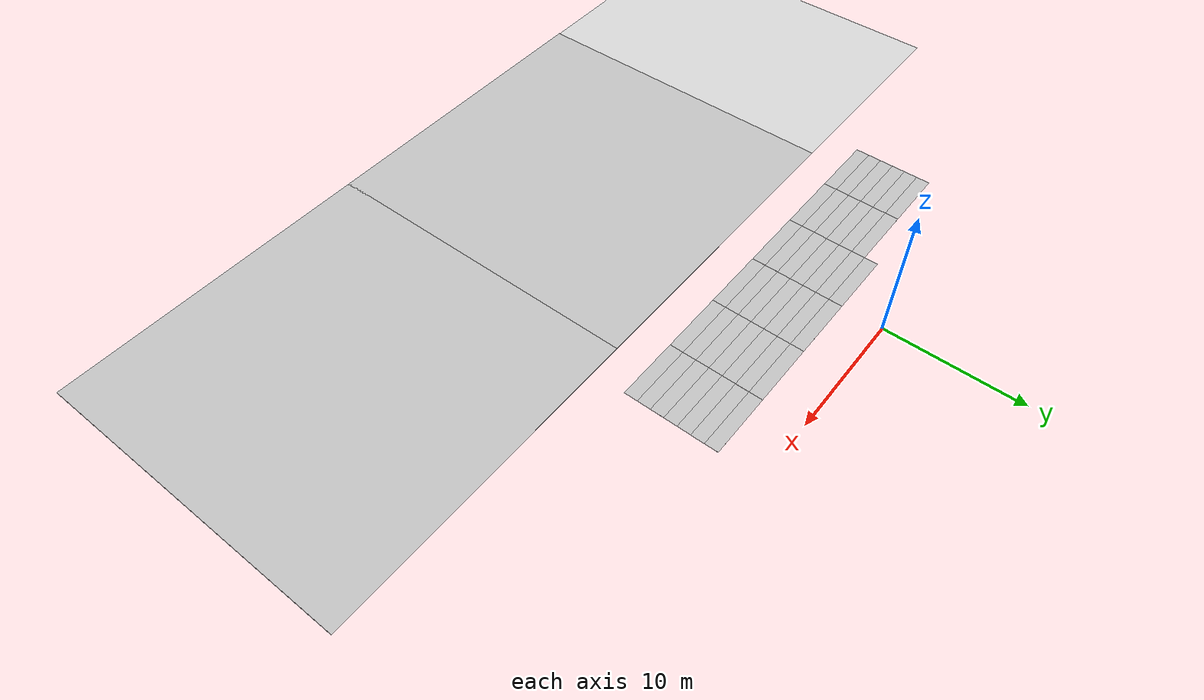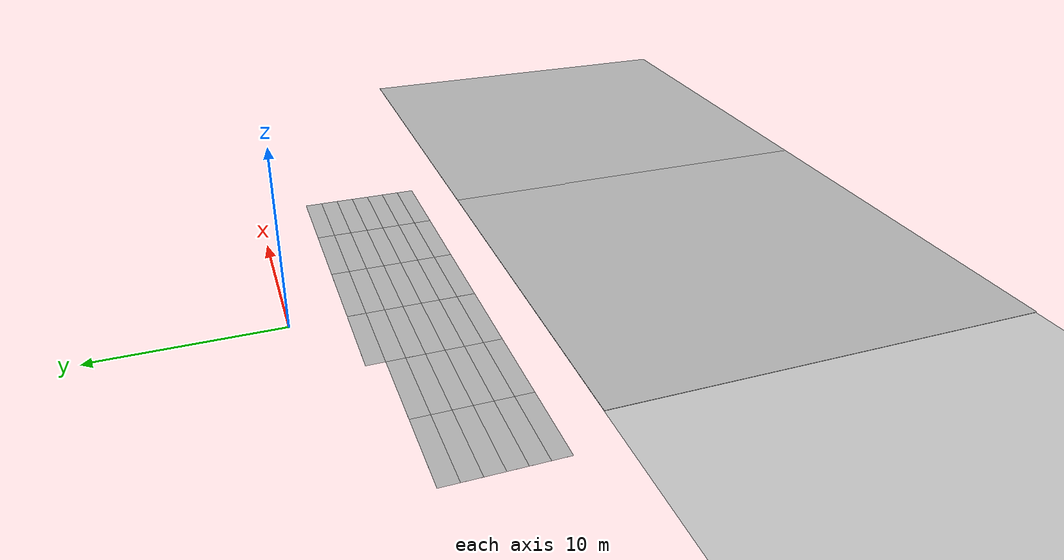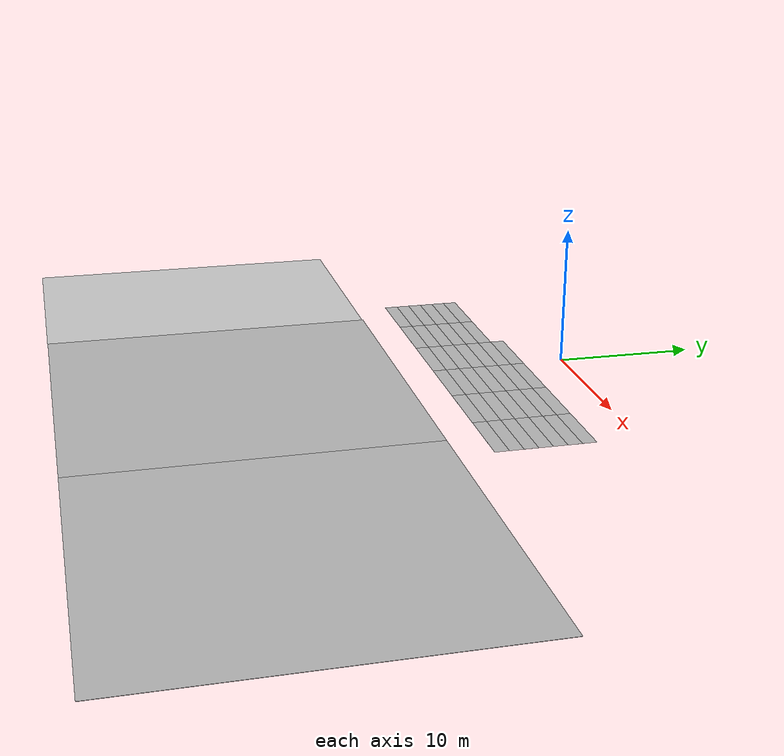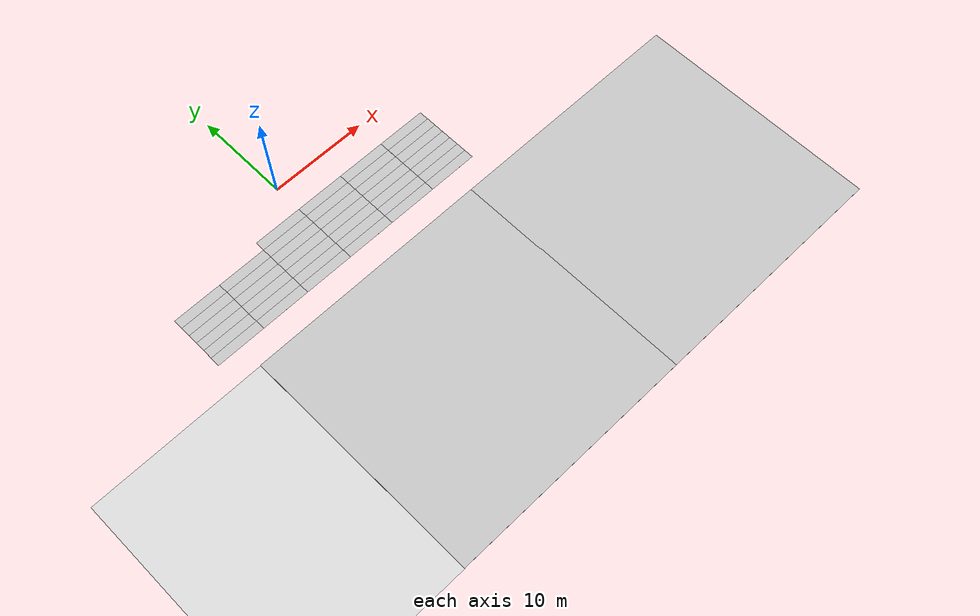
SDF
<sdf version="1.6">
 <world name="default">
  <model name="cmp9767m_ground_3_3">
   <static>1</static>
   <link name="dirt">
    <collision name="collision">
     <geometry><plane><normal>0 0 1</normal><size>25 25</size></plane></geometry>
     <surface><friction><ode><mu>100</mu><mu2>50</mu2></ode></friction></surface>
    </collision>
    <visual name="visual">
     <cast_shadows>0</cast_shadows>
     <geometry><plane><normal>0 0 1</normal><size>25 25</size></plane></geometry>
     <material>
      <script>
       <uri>model://cmp9767m_ground_3/materials/scripts</uri>
       <uri>model://cmp9767m_ground_3/materials/textures</uri>
       <name>cmp9767m_ground_3/dirt</name>
      </script>
     </material>
    </visual>
   </link>
   <pose>-24.8943 -25.0024 0 0 -0 0</pose>
  </model>
  <model name="cmp9767m_ground_3_4">
   <static>1</static>
   <link name="dirt">
    <collision name="collision">
     <geometry><plane><normal>0 0 1</normal><size>25 25</size></plane></geometry>
     <surface><friction><ode><mu>100</mu><mu2>50</mu2></ode></friction></surface>
    </collision>
    <visual name="visual">
     <cast_shadows>0</cast_shadows>
     <geometry><plane><normal>0 0 1</normal><size>25 25</size></plane></geometry>
     <material>
      <script>
       <uri>model://cmp9767m_ground_3/materials/scripts</uri>
       <uri>model://cmp9767m_ground_3/materials/textures</uri>
       <name>cmp9767m_ground_3/dirt</name>
      </script>
     </material>
    </visual>
   </link>
   <pose>0.027418 -24.9803 0 0 -0 0</pose>
  </model>
  <model name="cmp9767m_ground_3_5">
   <static>1</static>
   <link name="dirt">
    <collision name="collision">
     <geometry><plane><normal>0 0 1</normal><size>25 25</size></plane></geometry>
     <surface><friction><ode><mu>100</mu><mu2>50</mu2></ode></friction></surface>
    </collision>
    <visual name="visual">
     <cast_shadows>0</cast_shadows>
     <geometry><plane><normal>0 0 1</normal><size>25 25</size></plane></geometry>
     <material>
      <script>
       <uri>model://cmp9767m_ground_3/materials/scripts</uri>
       <uri>model://cmp9767m_ground_3/materials/textures</uri>
       <name>cmp9767m_ground_3/dirt</name>
      </script>
     </material>
    </visual>
   </link>
   <pose>24.9408 -24.9803 0 0 -0 0</pose>
  </model>
  <model name="crop_rows_5">
   <static>1</static>
   <link name="crop_rows">
    <pose>0 0 0.025 0 -0 0</pose>
    <collision name="collision">
     <geometry><plane><normal>0 0 1</normal><size>5 1</size></plane></geometry>
     <surface><friction><ode><mu>100</mu><mu2>50</mu2></ode></friction></surface>
    </collision>
    <visual name="visual">
     <cast_shadows>0</cast_shadows>
     <geometry><plane><normal>0 0 1</normal><size>5 1</size></plane></geometry>
     <material>
      <script>
       <uri>model://crop_rows/materials/scripts</uri>
       <uri>model://crop_rows/materials/textures</uri>
       <name>crop_rows/real_texture</name>
      </script>
     </material>
    </visual>
   </link>
   <pose>-2.50602 -3.5 0 0 -0 0</pose>
  </model>
  <model name="crop_rows_6">
   <static>1</static>
   <link name="crop_rows">
    <pose>0 0 0.025 0 -0 0</pose>
    <collision name="collision">
     <geometry><plane><normal>0 0 1</normal><size>5 1</size></plane></geometry>
     <surface><friction><ode><mu>100</mu><mu2>50</mu2></ode></friction></surface>
    </collision>
    <visual name="visual">
     <cast_shadows>0</cast_shadows>
     <geometry><plane><normal>0 0 1</normal><size>5 1</size></plane></geometry>
     <material>
      <script>
       <uri>model://crop_rows/materials/scripts</uri>
       <uri>model://crop_rows/materials/textures</uri>
       <name>crop_rows/real_texture</name>
      </script>
     </material>
    </visual>
   </link>
   <pose>2.5 -3.5 0 0 -0 0</pose>
  </model>
  <model name="crop_rows_7">
   <static>1</static>
   <link name="crop_rows">
    <pose>0 0 0.025 0 -0 0</pose>
    <collision name="collision">
     <geometry><plane><normal>0 0 1</normal><size>5 1</size></plane></geometry>
     <surface><friction><ode><mu>100</mu><mu2>50</mu2></ode></friction></surface>
    </collision>
    <visual name="visual">
     <cast_shadows>0</cast_shadows>
     <geometry><plane><normal>0 0 1</normal><size>5 1</size></plane></geometry>
     <material>
      <script>
       <uri>model://crop_rows/materials/scripts</uri>
       <uri>model://crop_rows/materials/textures</uri>
       <name>crop_rows/real_texture</name>
      </script>
     </material>
    </visual>
   </link>
   <pose>2.5 -4.5 0 0 -0 0</pose>
  </model>
  <model name="crop_rows_8">
   <static>1</static>
   <link name="crop_rows">
    <pose>0 0 0.025 0 -0 0</pose>
    <collision name="collision">
     <geometry><plane><normal>0 0 1</normal><size>5 1</size></plane></geometry>
     <surface><friction><ode><mu>100</mu><mu2>50</mu2></ode></friction></surface>
    </collision>
    <visual name="visual">
     <cast_shadows>0</cast_shadows>
     <geometry><plane><normal>0 0 1</normal><size>5 1</size></plane></geometry>
     <material>
      <script>
       <uri>model://crop_rows/materials/scripts</uri>
       <uri>model://crop_rows/materials/textures</uri>
       <name>crop_rows/real_texture</name>
      </script>
     </material>
    </visual>
   </link>
   <pose>-2.5 -4.5 0 0 -0 0</pose>
  </model>
  <model name="crop_rows_9">
   <static>1</static>
   <link name="crop_rows">
    <pose>0 0 0.025 0 -0 0</pose>
    <collision name="collision">
     <geometry><plane><normal>0 0 1</normal><size>5 1</size></plane></geometry>
     <surface><friction><ode><mu>100</mu><mu2>50</mu2></ode></friction></surface>
    </collision>
    <visual name="visual">
     <cast_shadows>0</cast_shadows>
     <geometry><plane><normal>0 0 1</normal><size>5 1</size></plane></geometry>
     <material>
      <script>
       <uri>model://crop_rows/materials/scripts</uri>
       <uri>model://crop_rows/materials/textures</uri>
       <name>crop_rows/real_texture</name>
      </script>
     </material>
    </visual>
   </link>
   <pose>2.5 -5.5 0 0 -0 0</pose>
  </model>
  <model name="crop_rows_10">
   <static>1</static>
   <link name="crop_rows">
    <pose>0 0 0.025 0 -0 0</pose>
    <collision name="collision">
     <geometry><plane><normal>0 0 1</normal><size>5 1</size></plane></geometry>
     <surface><friction><ode><mu>100</mu><mu2>50</mu2></ode></friction></surface>
    </collision>
    <visual name="visual">
     <cast_shadows>0</cast_shadows>
     <geometry><plane><normal>0 0 1</normal><size>5 1</size></plane></geometry>
     <material>
      <script>
       <uri>model://crop_rows/materials/scripts</uri>
       <uri>model://crop_rows/materials/textures</uri>
       <name>crop_rows/real_texture</name>
      </script>
     </material>
    </visual>
   </link>
   <pose>-2.5 -5.5 0 0 -0 0</pose>
  </model>
  <model name="crop_rows_19">
   <static>1</static>
   <link name="crop_rows">
    <pose>0 0 0.025 0 -0 0</pose>
    <collision name="collision">
     <geometry><plane><normal>0 0 1</normal><size>5 1</size></plane></geometry>
     <surface><friction><ode><mu>100</mu><mu2>50</mu2></ode></friction></surface>
    </collision>
    <visual name="visual">
     <cast_shadows>0</cast_shadows>
     <geometry><plane><normal>0 0 1</normal><size>5 1</size></plane></geometry>
     <material>
      <script>
       <uri>model://crop_rows/materials/scripts</uri>
       <uri>model://crop_rows/materials/textures</uri>
       <name>crop_rows/real_texture</name>
      </script>
     </material>
    </visual>
   </link>
   <pose>7.5 -5.5 0 0 -0 0</pose>
  </model>
  <model name="crop_rows_20">
   <static>1</static>
   <link name="crop_rows">
    <pose>0 0 0.025 0 -0 0</pose>
    <collision name="collision">
     <geometry><plane><normal>0 0 1</normal><size>5 1</size></plane></geometry>
     <surface><friction><ode><mu>100</mu><mu2>50</mu2></ode></friction></surface>
    </collision>
    <visual name="visual">
     <cast_shadows>0</cast_shadows>
     <geometry><plane><normal>0 0 1</normal><size>5 1</size></plane></geometry>
     <material>
      <script>
       <uri>model://crop_rows/materials/scripts</uri>
       <uri>model://crop_rows/materials/textures</uri>
       <name>crop_rows/real_texture</name>
      </script>
     </material>
    </visual>
   </link>
   <pose>7.5 -4.5 0 0 -0 0</pose>
  </model>
  <model name="crop_rows_21">
   <static>1</static>
   <link name="crop_rows">
    <pose>0 0 0.025 0 -0 0</pose>
    <collision name="collision">
     <geometry><plane><normal>0 0 1</normal><size>5 1</size></plane></geometry>
     <surface><friction><ode><mu>100</mu><mu2>50</mu2></ode></friction></surface>
    </collision>
    <visual name="visual">
     <cast_shadows>0</cast_shadows>
     <geometry><plane><normal>0 0 1</normal><size>5 1</size></plane></geometry>
     <material>
      <script>
       <uri>model://crop_rows/materials/scripts</uri>
       <uri>model://crop_rows/materials/textures</uri>
       <name>crop_rows/real_texture</name>
      </script>
     </material>
    </visual>
   </link>
   <pose>7.5 -3.5 0 0 -0 0</pose>
  </model>
  <model name="crop_rows_38">
   <static>1</static>
   <link name="crop_rows">
    <pose>0 0 0.025 0 -0 0</pose>
    <collision name="collision">
     <geometry><plane><normal>0 0 1</normal><size>5 1</size></plane></geometry>
     <surface><friction><ode><mu>100</mu><mu2>50</mu2></ode></friction></surface>
    </collision>
    <visual name="visual">
     <cast_shadows>0</cast_shadows>
     <geometry><plane><normal>0 0 1</normal><size>5 1</size></plane></geometry>
     <material>
      <script>
       <uri>model://crop_rows/materials/scripts</uri>
       <uri>model://crop_rows/materials/textures</uri>
       <name>crop_rows/real_texture</name>
      </script>
     </material>
    </visual>
   </link>
   <pose>-2.5 -6.5 0 0 -0 0</pose>
  </model>
  <model name="crop_rows_39">
   <static>1</static>
   <link name="crop_rows">
    <pose>0 0 0.025 0 -0 0</pose>
    <collision name="collision">
     <geometry><plane><normal>0 0 1</normal><size>5 1</size></plane></geometry>
     <surface><friction><ode><mu>100</mu><mu2>50</mu2></ode></friction></surface>
    </collision>
    <visual name="visual">
     <cast_shadows>0</cast_shadows>
     <geometry><plane><normal>0 0 1</normal><size>5 1</size></plane></geometry>
     <material>
      <script>
       <uri>model://crop_rows/materials/scripts</uri>
       <uri>model://crop_rows/materials/textures</uri>
       <name>crop_rows/real_texture</name>
      </script>
     </material>
    </visual>
   </link>
   <pose>2.5 -6.5 0 0 -0 0</pose>
  </model>
  <model name="crop_rows_40">
   <static>1</static>
   <link name="crop_rows">
    <pose>0 0 0.025 0 -0 0</pose>
    <collision name="collision">
     <geometry><plane><normal>0 0 1</normal><size>5 1</size></plane></geometry>
     <surface><friction><ode><mu>100</mu><mu2>50</mu2></ode></friction></surface>
    </collision>
    <visual name="visual">
     <cast_shadows>0</cast_shadows>
     <geometry><plane><normal>0 0 1</normal><size>5 1</size></plane></geometry>
     <material>
      <script>
       <uri>model://crop_rows/materials/scripts</uri>
       <uri>model://crop_rows/materials/textures</uri>
       <name>crop_rows/real_texture</name>
      </script>
     </material>
    </visual>
   </link>
   <pose>7.5 -6.5 0 0 -0 0</pose>
  </model>
  <model name="crop_rows_44">
   <static>1</static>
   <link name="crop_rows">
    <pose>0 0 0.025 0 -0 0</pose>
    <collision name="collision">
     <geometry><plane><normal>0 0 1</normal><size>5 1</size></plane></geometry>
     <surface><friction><ode><mu>100</mu><mu2>50</mu2></ode></friction></surface>
    </collision>
    <visual name="visual">
     <cast_shadows>0</cast_shadows>
     <geometry><plane><normal>0 0 1</normal><size>5 1</size></plane></geometry>
     <material>
      <script>
       <uri>model://crop_rows/materials/scripts</uri>
       <uri>model://crop_rows/materials/textures</uri>
       <name>crop_rows/real_texture</name>
      </script>
     </material>
    </visual>
   </link>
   <pose>-2.5 -7.5 0 0 -0 0</pose>
  </model>
  <model name="crop_rows_45">
   <static>1</static>
   <link name="crop_rows">
    <pose>0 0 0.025 0 -0 0</pose>
    <collision name="collision">
     <geometry><plane><normal>0 0 1</normal><size>5 1</size></plane></geometry>
     <surface><friction><ode><mu>100</mu><mu2>50</mu2></ode></friction></surface>
    </collision>
    <visual name="visual">
     <cast_shadows>0</cast_shadows>
     <geometry><plane><normal>0 0 1</normal><size>5 1</size></plane></geometry>
     <material>
      <script>
       <uri>model://crop_rows/materials/scripts</uri>
       <uri>model://crop_rows/materials/textures</uri>
       <name>crop_rows/real_texture</name>
      </script>
     </material>
    </visual>
   </link>
   <pose>2.5 -7.5 0 0 -0 0</pose>
  </model>
  <model name="crop_rows_46">
   <static>1</static>
   <link name="crop_rows">
    <pose>0 0 0.025 0 -0 0</pose>
    <collision name="collision">
     <geometry><plane><normal>0 0 1</normal><size>5 1</size></plane></geometry>
     <surface><friction><ode><mu>100</mu><mu2>50</mu2></ode></friction></surface>
    </collision>
    <visual name="visual">
     <cast_shadows>0</cast_shadows>
     <geometry><plane><normal>0 0 1</normal><size>5 1</size></plane></geometry>
     <material>
      <script>
       <uri>model://crop_rows/materials/scripts</uri>
       <uri>model://crop_rows/materials/textures</uri>
       <name>crop_rows/real_texture</name>
      </script>
     </material>
    </visual>
   </link>
   <pose>7.5 -7.5 0 0 -0 0</pose>
  </model>
  <model name="crop_rows_47">
   <static>1</static>
   <link name="crop_rows">
    <pose>0 0 0.025 0 -0 0</pose>
    <collision name="collision">
     <geometry><plane><normal>0 0 1</normal><size>5 1</size></plane></geometry>
     <surface><friction><ode><mu>100</mu><mu2>50</mu2></ode></friction></surface>
    </collision>
    <visual name="visual">
     <cast_shadows>0</cast_shadows>
     <geometry><plane><normal>0 0 1</normal><size>5 1</size></plane></geometry>
     <material>
      <script>
       <uri>model://crop_rows/materials/scripts</uri>
       <uri>model://crop_rows/materials/textures</uri>
       <name>crop_rows/real_texture</name>
      </script>
     </material>
    </visual>
   </link>
   <pose>12.5 -7.5 0 0 -0 0</pose>
  </model>
  <model name="crop_rows_48">
   <static>1</static>
   <link name="crop_rows">
    <pose>0 0 0.025 0 -0 0</pose>
    <collision name="collision">
     <geometry><plane><normal>0 0 1</normal><size>5 1</size></plane></geometry>
     <surface><friction><ode><mu>100</mu><mu2>50</mu2></ode></friction></surface>
    </collision>
    <visual name="visual">
     <cast_shadows>0</cast_shadows>
     <geometry><plane><normal>0 0 1</normal><size>5 1</size></plane></geometry>
     <material>
      <script>
       <uri>model://crop_rows/materials/scripts</uri>
       <uri>model://crop_rows/materials/textures</uri>
       <name>crop_rows/real_texture</name>
      </script>
     </material>
    </visual>
   </link>
   <pose>12.5 -6.5 0 0 -0 0</pose>
  </model>
  <model name="crop_rows_49">
   <static>1</static>
   <link name="crop_rows">
    <pose>0 0 0.025 0 -0 0</pose>
    <collision name="collision">
     <geometry><plane><normal>0 0 1</normal><size>5 1</size></plane></geometry>
     <surface><friction><ode><mu>100</mu><mu2>50</mu2></ode></friction></surface>
    </collision>
    <visual name="visual">
     <cast_shadows>0</cast_shadows>
     <geometry><plane><normal>0 0 1</normal><size>5 1</size></plane></geometry>
     <material>
      <script>
       <uri>model://crop_rows/materials/scripts</uri>
       <uri>model://crop_rows/materials/textures</uri>
       <name>crop_rows/real_texture</name>
      </script>
     </material>
    </visual>
   </link>
   <pose>12.5 -5.5 0 0 -0 0</pose>
  </model>
  <model name="crop_rows_50">
   <static>1</static>
   <link name="crop_rows">
    <pose>0 0 0.025 0 -0 0</pose>
    <collision name="collision">
     <geometry><plane><normal>0 0 1</normal><size>5 1</size></plane></geometry>
     <surface><friction><ode><mu>100</mu><mu2>50</mu2></ode></friction></surface>
    </collision>
    <visual name="visual">
     <cast_shadows>0</cast_shadows>
     <geometry><plane><normal>0 0 1</normal><size>5 1</size></plane></geometry>
     <material>
      <script>
       <uri>model://crop_rows/materials/scripts</uri>
       <uri>model://crop_rows/materials/textures</uri>
       <name>crop_rows/real_texture</name>
      </script>
     </material>
    </visual>
   </link>
   <pose>12.509 -4.5 0 0 -0 0</pose>
  </model>
  <model name="crop_rows_51">
   <static>1</static>
   <link name="crop_rows">
    <pose>0 0 0.025 0 -0 0</pose>
    <collision name="collision">
     <geometry><plane><normal>0 0 1</normal><size>5 1</size></plane></geometry>
     <surface><friction><ode><mu>100</mu><mu2>50</mu2></ode></friction></surface>
    </collision>
    <visual name="visual">
     <cast_shadows>0</cast_shadows>
     <geometry><plane><normal>0 0 1</normal><size>5 1</size></plane></geometry>
     <material>
      <script>
       <uri>model://crop_rows/materials/scripts</uri>
       <uri>model://crop_rows/materials/textures</uri>
       <name>crop_rows/real_texture</name>
      </script>
     </material>
    </visual>
   </link>
   <pose>12.5 -3.5 0 0 -0 0</pose>
  </model>
  <model name="crop_rows_63">
   <static>1</static>
   <link name="crop_rows">
    <pose>0 0 0.025 0 -0 0</pose>
    <collision name="collision">
     <geometry><plane><normal>0 0 1</normal><size>5 1</size></plane></geometry>
     <surface><friction><ode><mu>100</mu><mu2>50</mu2></ode></friction></surface>
    </collision>
    <visual name="visual">
     <cast_shadows>0</cast_shadows>
     <geometry><plane><normal>0 0 1</normal><size>5 1</size></plane></geometry>
     <material>
      <script>
       <uri>model://crop_rows/materials/scripts</uri>
       <uri>model://crop_rows/materials/textures</uri>
       <name>crop_rows/real_texture</name>
      </script>
     </material>
    </visual>
   </link>
   <pose>-2.5 -8.5 0 0 -0 0</pose>
  </model>
  <model name="crop_rows_64">
   <static>1</static>
   <link name="crop_rows">
    <pose>0 0 0.025 0 -0 0</pose>
    <collision name="collision">
     <geometry><plane><normal>0 0 1</normal><size>5 1</size></plane></geometry>
     <surface><friction><ode><mu>100</mu><mu2>50</mu2></ode></friction></surface>
    </collision>
    <visual name="visual">
     <cast_shadows>0</cast_shadows>
     <geometry><plane><normal>0 0 1</normal><size>5 1</size></plane></geometry>
     <material>
      <script>
       <uri>model://crop_rows/materials/scripts</uri>
       <uri>model://crop_rows/materials/textures</uri>
       <name>crop_rows/real_texture</name>
      </script>
     </material>
    </visual>
   </link>
   <pose>2.50375 -8.5 0 0 -0 0</pose>
  </model>
  <model name="crop_rows_65">
   <static>1</static>
   <link name="crop_rows">
    <pose>0 0 0.025 0 -0 0</pose>
    <collision name="collision">
     <geometry><plane><normal>0 0 1</normal><size>5 1</size></plane></geometry>
     <surface><friction><ode><mu>100</mu><mu2>50</mu2></ode></friction></surface>
    </collision>
    <visual name="visual">
     <cast_shadows>0</cast_shadows>
     <geometry><plane><normal>0 0 1</normal><size>5 1</size></plane></geometry>
     <material>
      <script>
       <uri>model://crop_rows/materials/scripts</uri>
       <uri>model://crop_rows/materials/textures</uri>
       <name>crop_rows/real_texture</name>
      </script>
     </material>
    </visual>
   </link>
   <pose>-2.5 -9.5 0 0 -0 0</pose>
  </model>
  <model name="crop_rows_66">
   <static>1</static>
   <link name="crop_rows">
    <pose>0 0 0.025 0 -0 0</pose>
    <collision name="collision">
     <geometry><plane><normal>0 0 1</normal><size>5 1</size></plane></geometry>
     <surface><friction><ode><mu>100</mu><mu2>50</mu2></ode></friction></surface>
    </collision>
    <visual name="visual">
     <cast_shadows>0</cast_shadows>
     <geometry><plane><normal>0 0 1</normal><size>5 1</size></plane></geometry>
     <material>
      <script>
       <uri>model://crop_rows/materials/scripts</uri>
       <uri>model://crop_rows/materials/textures</uri>
       <name>crop_rows/real_texture</name>
      </script>
     </material>
    </visual>
   </link>
   <pose>2.50953 -9.5 0 0 -0 0</pose>
  </model>
  <model name="crop_rows_67">
   <static>1</static>
   <link name="crop_rows">
    <pose>0 0 0.025 0 -0 0</pose>
    <collision name="collision">
     <geometry><plane><normal>0 0 1</normal><size>5 1</size></plane></geometry>
     <surface><friction><ode><mu>100</mu><mu2>50</mu2></ode></friction></surface>
    </collision>
    <visual name="visual">
     <cast_shadows>0</cast_shadows>
     <geometry><plane><normal>0 0 1</normal><size>5 1</size></plane></geometry>
     <material>
      <script>
       <uri>model://crop_rows/materials/scripts</uri>
       <uri>model://crop_rows/materials/textures</uri>
       <name>crop_rows/real_texture</name>
      </script>
     </material>
    </visual>
   </link>
   <pose>-7.5 -9.5 0 0 -0 0</pose>
  </model>
  <model name="crop_rows_68">
   <static>1</static>
   <link name="crop_rows">
    <pose>0 0 0.025 0 -0 0</pose>
    <collision name="collision">
     <geometry><plane><normal>0 0 1</normal><size>5 1</size></plane></geometry>
     <surface><friction><ode><mu>100</mu><mu2>50</mu2></ode></friction></surface>
    </collision>
    <visual name="visual">
     <cast_shadows>0</cast_shadows>
     <geometry><plane><normal>0 0 1</normal><size>5 1</size></plane></geometry>
     <material>
      <script>
       <uri>model://crop_rows/materials/scripts</uri>
       <uri>model://crop_rows/materials/textures</uri>
       <name>crop_rows/real_texture</name>
      </script>
     </material>
    </visual>
   </link>
   <pose>-7.5 -8.5 0 0 -0 0</pose>
  </model>
  <model name="crop_rows_69">
   <static>1</static>
   <link name="crop_rows">
    <pose>0 0 0.025 0 -0 0</pose>
    <collision name="collision">
     <geometry><plane><normal>0 0 1</normal><size>5 1</size></plane></geometry>
     <surface><friction><ode><mu>100</mu><mu2>50</mu2></ode></friction></surface>
    </collision>
    <visual name="visual">
     <cast_shadows>0</cast_shadows>
     <geometry><plane><normal>0 0 1</normal><size>5 1</size></plane></geometry>
     <material>
      <script>
       <uri>model://crop_rows/materials/scripts</uri>
       <uri>model://crop_rows/materials/textures</uri>
       <name>crop_rows/real_texture</name>
      </script>
     </material>
    </visual>
   </link>
   <pose>-7.5 -7.5 0 0 -0 0</pose>
  </model>
  <model name="crop_rows_70">
   <static>1</static>
   <link name="crop_rows">
    <pose>0 0 0.025 0 -0 0</pose>
    <collision name="collision">
     <geometry><plane><normal>0 0 1</normal><size>5 1</size></plane></geometry>
     <surface><friction><ode><mu>100</mu><mu2>50</mu2></ode></friction></surface>
    </collision>
    <visual name="visual">
     <cast_shadows>0</cast_shadows>
     <geometry><plane><normal>0 0 1</normal><size>5 1</size></plane></geometry>
     <material>
      <script>
       <uri>model://crop_rows/materials/scripts</uri>
       <uri>model://crop_rows/materials/textures</uri>
       <name>crop_rows/real_texture</name>
      </script>
     </material>
    </visual>
   </link>
   <pose>7.5033 -9.5 0 0 -0 0</pose>
  </model>
  <model name="crop_rows_71">
   <static>1</static>
   <link name="crop_rows">
    <pose>0 0 0.025 0 -0 0</pose>
    <collision name="collision">
     <geometry><plane><normal>0 0 1</normal><size>5 1</size></plane></geometry>
     <surface><friction><ode><mu>100</mu><mu2>50</mu2></ode></friction></surface>
    </collision>
    <visual name="visual">
     <cast_shadows>0</cast_shadows>
     <geometry><plane><normal>0 0 1</normal><size>5 1</size></plane></geometry>
     <material>
      <script>
       <uri>model://crop_rows/materials/scripts</uri>
       <uri>model://crop_rows/materials/textures</uri>
       <name>crop_rows/real_texture</name>
      </script>
     </material>
    </visual>
   </link>
   <pose>7.5 -8.5 0 0 -0 0</pose>
  </model>
  <model name="crop_rows_72">
   <static>1</static>
   <link name="crop_rows">
    <pose>0 0 0.025 0 -0 0</pose>
    <collision name="collision">
     <geometry><plane><normal>0 0 1</normal><size>5 1</size></plane></geometry>
     <surface><friction><ode><mu>100</mu><mu2>50</mu2></ode></friction></surface>
    </collision>
    <visual name="visual">
     <cast_shadows>0</cast_shadows>
     <geometry><plane><normal>0 0 1</normal><size>5 1</size></plane></geometry>
     <material>
      <script>
       <uri>model://crop_rows/materials/scripts</uri>
       <uri>model://crop_rows/materials/textures</uri>
       <name>crop_rows/real_texture</name>
      </script>
     </material>
    </visual>
   </link>
   <pose>12.5 -8.5 0 0 -0 0</pose>
  </model>
  <model name="crop_rows_73">
   <static>1</static>
   <link name="crop_rows">
    <pose>0 0 0.025 0 -0 0</pose>
    <collision name="collision">
     <geometry><plane><normal>0 0 1</normal><size>5 1</size></plane></geometry>
     <surface><friction><ode><mu>100</mu><mu2>50</mu2></ode></friction></surface>
    </collision>
    <visual name="visual">
     <cast_shadows>0</cast_shadows>
     <geometry><plane><normal>0 0 1</normal><size>5 1</size></plane></geometry>
     <material>
      <script>
       <uri>model://crop_rows/materials/scripts</uri>
       <uri>model://crop_rows/materials/textures</uri>
       <name>crop_rows/real_texture</name>
      </script>
     </material>
    </visual>
   </link>
   <pose>12.5 -9.5 0 0 -0 0</pose>
  </model>
  <model name="crop_rows_74">
   <static>1</static>
   <link name="crop_rows">
    <pose>0 0 0.025 0 -0 0</pose>
    <collision name="collision">
     <geometry><plane><normal>0 0 1</normal><size>5 1</size></plane></geometry>
     <surface><friction><ode><mu>100</mu><mu2>50</mu2></ode></friction></surface>
    </collision>
    <visual name="visual">
     <cast_shadows>0</cast_shadows>
     <geometry><plane><normal>0 0 1</normal><size>5 1</size></plane></geometry>
     <material>
      <script>
       <uri>model://crop_rows/materials/scripts</uri>
       <uri>model://crop_rows/materials/textures</uri>
       <name>crop_rows/real_texture</name>
      </script>
     </material>
    </visual>
   </link>
   <pose>-7.5 -6.5 0 0 -0 0</pose>
  </model>
  <model name="crop_rows_75">
   <static>1</static>
   <link name="crop_rows">
    <pose>0 0 0.025 0 -0 0</pose>
    <collision name="collision">
     <geometry><plane><normal>0 0 1</normal><size>5 1</size></plane></geometry>
     <surface><friction><ode><mu>100</mu><mu2>50</mu2></ode></friction></surface>
    </collision>
    <visual name="visual">
     <cast_shadows>0</cast_shadows>
     <geometry><plane><normal>0 0 1</normal><size>5 1</size></plane></geometry>
     <material>
      <script>
       <uri>model://crop_rows/materials/scripts</uri>
       <uri>model://crop_rows/materials/textures</uri>
       <name>crop_rows/real_texture</name>
      </script>
     </material>
    </visual>
   </link>
   <pose>-7.50422 -5.5 0 0 -0 0</pose>
  </model>
  <model name="crop_rows_76">
   <static>1</static>
   <link name="crop_rows">
    <pose>0 0 0.025 0 -0 0</pose>
    <collision name="collision">
     <geometry><plane><normal>0 0 1</normal><size>5 1</size></plane></geometry>
     <surface><friction><ode><mu>100</mu><mu2>50</mu2></ode></friction></surface>
    </collision>
    <visual name="visual">
     <cast_shadows>0</cast_shadows>
     <geometry><plane><normal>0 0 1</normal><size>5 1</size></plane></geometry>
     <material>
      <script>
       <uri>model://crop_rows/materials/scripts</uri>
       <uri>model://crop_rows/materials/textures</uri>
       <name>crop_rows/real_texture</name>
      </script>
     </material>
    </visual>
   </link>
   <pose>-7.5 -4.5 0 0 -0 0</pose>
  </model>
  <model name="crop_rows_113">
   <static>1</static>
   <link name="crop_rows">
    <pose>0 0 0.025 0 -0 0</pose>
    <collision name="collision">
     <geometry><plane><normal>0 0 1</normal><size>5 1</size></plane></geometry>
     <surface><friction><ode><mu>100</mu><mu2>50</mu2></ode></friction></surface>
    </collision>
    <visual name="visual">
     <cast_shadows>0</cast_shadows>
     <geometry><plane><normal>0 0 1</normal><size>5 1</size></plane></geometry>
     <material>
      <script>
       <uri>model://crop_rows/materials/scripts</uri>
       <uri>model://crop_rows/materials/textures</uri>
       <name>crop_rows/real_texture</name>
      </script>
     </material>
    </visual>
   </link>
   <pose>-12.5 -4.5 0 0 -0 0</pose>
  </model>
  <model name="crop_rows_114">
   <static>1</static>
   <link name="crop_rows">
    <pose>0 0 0.025 0 -0 0</pose>
    <collision name="collision">
     <geometry><plane><normal>0 0 1</normal><size>5 1</size></plane></geometry>
     <surface><friction><ode><mu>100</mu><mu2>50</mu2></ode></friction></surface>
    </collision>
    <visual name="visual">
     <cast_shadows>0</cast_shadows>
     <geometry><plane><normal>0 0 1</normal><size>5 1</size></plane></geometry>
     <material>
      <script>
       <uri>model://crop_rows/materials/scripts</uri>
       <uri>model://crop_rows/materials/textures</uri>
       <name>crop_rows/real_texture</name>
      </script>
     </material>
    </visual>
   </link>
   <pose>-12.5 -5.5 0 0 -0 0</pose>
  </model>
  <model name="crop_rows_115">
   <static>1</static>
   <link name="crop_rows">
    <pose>0 0 0.025 0 -0 0</pose>
    <collision name="collision">
     <geometry><plane><normal>0 0 1</normal><size>5 1</size></plane></geometry>
     <surface><friction><ode><mu>100</mu><mu2>50</mu2></ode></friction></surface>
    </collision>
    <visual name="visual">
     <cast_shadows>0</cast_shadows>
     <geometry><plane><normal>0 0 1</normal><size>5 1</size></plane></geometry>
     <material>
      <script>
       <uri>model://crop_rows/materials/scripts</uri>
       <uri>model://crop_rows/materials/textures</uri>
       <name>crop_rows/real_texture</name>
      </script>
     </material>
    </visual>
   </link>
   <pose>-12.5 -6.5 0 0 -0 0</pose>
  </model>
  <model name="crop_rows_116">
   <static>1</static>
   <link name="crop_rows">
    <pose>0 0 0.025 0 -0 0</pose>
    <collision name="collision">
     <geometry><plane><normal>0 0 1</normal><size>5 1</size></plane></geometry>
     <surface><friction><ode><mu>100</mu><mu2>50</mu2></ode></friction></surface>
    </collision>
    <visual name="visual">
     <cast_shadows>0</cast_shadows>
     <geometry><plane><normal>0 0 1</normal><size>5 1</size></plane></geometry>
     <material>
      <script>
       <uri>model://crop_rows/materials/scripts</uri>
       <uri>model://crop_rows/materials/textures</uri>
       <name>crop_rows/real_texture</name>
      </script>
     </material>
    </visual>
   </link>
   <pose>-12.5 -7.5 0 0 -0 0</pose>
  </model>
  <model name="crop_rows_117">
   <static>1</static>
   <link name="crop_rows">
    <pose>0 0 0.025 0 -0 0</pose>
    <collision name="collision">
     <geometry><plane><normal>0 0 1</normal><size>5 1</size></plane></geometry>
     <surface><friction><ode><mu>100</mu><mu2>50</mu2></ode></friction></surface>
    </collision>
    <visual name="visual">
     <cast_shadows>0</cast_shadows>
     <geometry><plane><normal>0 0 1</normal><size>5 1</size></plane></geometry>
     <material>
      <script>
       <uri>model://crop_rows/materials/scripts</uri>
       <uri>model://crop_rows/materials/textures</uri>
       <name>crop_rows/real_texture</name>
      </script>
     </material>
    </visual>
   </link>
   <pose>-12.5 -9.5 0 0 -0 0</pose>
  </model>
  <model name="crop_rows_118">
   <static>1</static>
   <link name="crop_rows">
    <pose>0 0 0.025 0 -0 0</pose>
    <collision name="collision">
     <geometry><plane><normal>0 0 1</normal><size>5 1</size></plane></geometry>
     <surface><friction><ode><mu>100</mu><mu2>50</mu2></ode></friction></surface>
    </collision>
    <visual name="visual">
     <cast_shadows>0</cast_shadows>
     <geometry><plane><normal>0 0 1</normal><size>5 1</size></plane></geometry>
     <material>
      <script>
       <uri>model://crop_rows/materials/scripts</uri>
       <uri>model://crop_rows/materials/textures</uri>
       <name>crop_rows/real_texture</name>
      </script>
     </material>
    </visual>
   </link>
   <pose>-12.5 -9.5 0 0 -0 0</pose>
  </model>
  <model name="crop_rows_119">
   <static>1</static>
   <link name="crop_rows">
    <pose>0 0 0.025 0 -0 0</pose>
    <collision name="collision">
     <geometry><plane><normal>0 0 1</normal><size>5 1</size></plane></geometry>
     <surface><friction><ode><mu>100</mu><mu2>50</mu2></ode></friction></surface>
    </collision>
    <visual name="visual">
     <cast_shadows>0</cast_shadows>
     <geometry><plane><normal>0 0 1</normal><size>5 1</size></plane></geometry>
     <material>
      <script>
       <uri>model://crop_rows/materials/scripts</uri>
       <uri>model://crop_rows/materials/textures</uri>
       <name>crop_rows/real_texture</name>
      </script>
     </material>
    </visual>
   </link>
   <pose>-12.5 -8.5 0 0 -0 0</pose>
  </model>
 </world>
</sdf>
